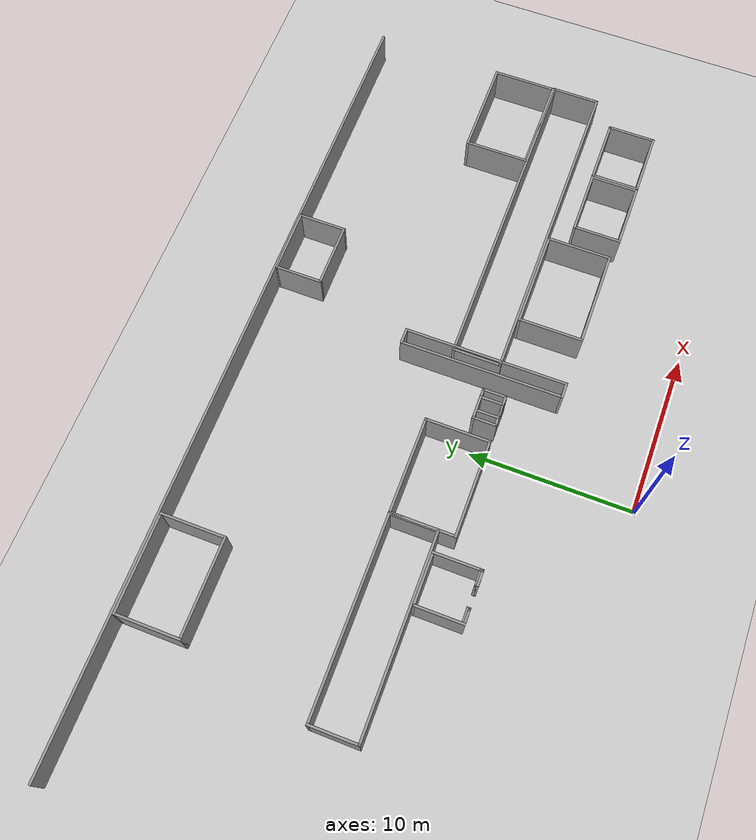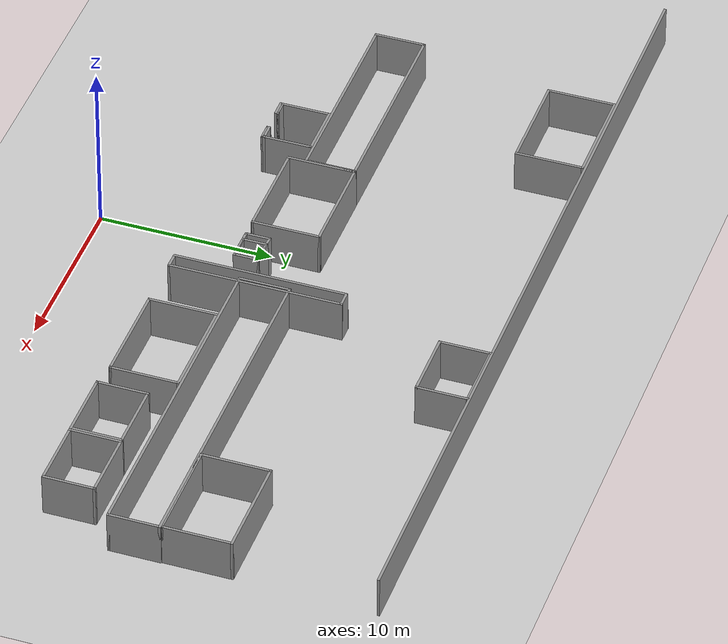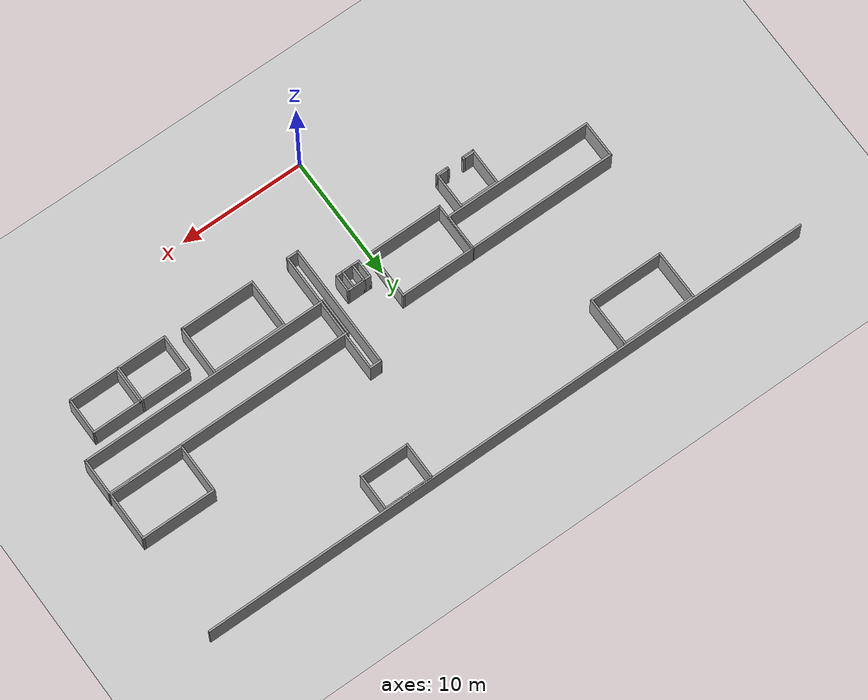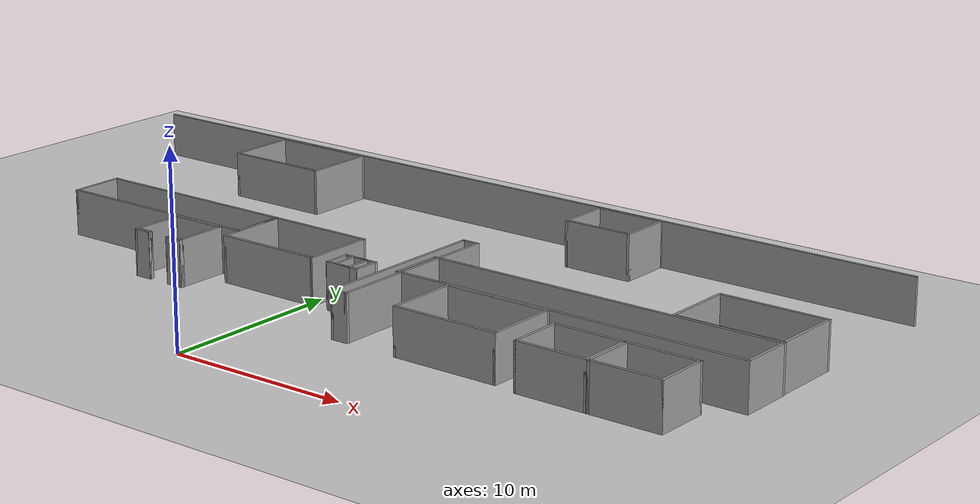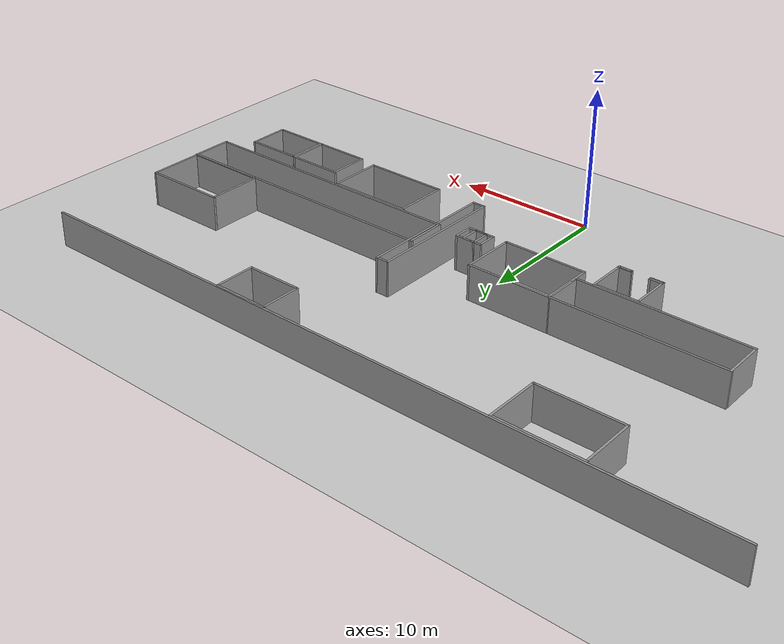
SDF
<sdf version="1.6">
 <world name="default">
  <model name="ground_plane">
   <static>1</static>
   <link name="link">
    <collision name="collision">
     <geometry><plane><normal>0 0 1</normal><size>100 100</size></plane></geometry>
     <surface>
      <contact><collide_bitmask>65535</collide_bitmask></contact>
      <friction><ode><mu>100</mu><mu2>50</mu2></ode></friction>
     </surface>
    </collision>
    <visual name="visual">
     <cast_shadows>0</cast_shadows>
     <geometry><plane><normal>0 0 1</normal><size>100 100</size></plane></geometry>
     <material>
      <script><uri>file://media/materials/scripts/gazebo.material</uri><name>Gazebo/Grey</name></script>
     </material>
    </visual>
   </link>
  </model>
  <model name="wall_50m_1">
   <pose>-0.069466 24.7463 0 0 -0 0</pose>
   <link name="Wall_0">
    <collision name="Wall_0_Collision">
     <geometry><box><size>50 0.15 2.5</size></box></geometry>
     <pose>0 0 1.25 0 -0 0</pose>
    </collision>
    <visual name="Wall_0_Visual">
     <pose>0 0 1.25 0 -0 0</pose>
     <geometry><box><size>50 0.15 2.5</size></box></geometry>
     <material>
      <script><uri>file://media/materials/scripts/gazebo.material</uri><name>Gazebo/Grey</name></script>
      <ambient>1 1 1 1</ambient>
     </material>
     <meta><layer>0</layer></meta>
    </visual>
    <pose>-1e-06 0 0 0 -0 0</pose>
   </link>
   <static>1</static>
  </model>
  <model name="base3x12">
   <pose>-11.5553 11.4309 0 0 -0 0</pose>
   <link name="Wall_0">
    <collision name="Wall_0_Collision">
     <geometry><box><size>3 0.15 2.5</size></box></geometry>
     <pose>0 0 1.25 0 -0 0</pose>
    </collision>
    <visual name="Wall_0_Visual">
     <pose>0 0 1.25 0 -0 0</pose>
     <geometry><box><size>3 0.15 2.5</size></box></geometry>
     <material>
      <script><uri>file://media/materials/scripts/gazebo.material</uri><name>Gazebo/Grey</name></script>
      <ambient>1 1 1 1</ambient>
     </material>
     <meta><layer>0</layer></meta>
    </visual>
    <pose>-5.925 0 0 0 -0 -1.5708</pose>
   </link>
   <link name="Wall_1">
    <collision name="Wall_1_Collision">
     <geometry><box><size>12 0.15 2.5</size></box></geometry>
     <pose>0 0 1.25 0 -0 0</pose>
    </collision>
    <visual name="Wall_1_Visual">
     <pose>0 0 1.25 0 -0 0</pose>
     <geometry><box><size>12 0.15 2.5</size></box></geometry>
     <material>
      <script><uri>file://media/materials/scripts/gazebo.material</uri><name>Gazebo/Grey</name></script>
      <ambient>1 1 1 1</ambient>
     </material>
     <meta><layer>0</layer></meta>
    </visual>
    <pose>0 -1.425 0 0 -0 0</pose>
   </link>
   <link name="Wall_2">
    <collision name="Wall_2_Collision">
     <geometry><box><size>3 0.15 2.5</size></box></geometry>
     <pose>0 0 1.25 0 -0 0</pose>
    </collision>
    <visual name="Wall_2_Visual">
     <pose>0 0 1.25 0 -0 0</pose>
     <geometry><box><size>3 0.15 2.5</size></box></geometry>
     <material>
      <script><uri>file://media/materials/scripts/gazebo.material</uri><name>Gazebo/Grey</name></script>
      <ambient>1 1 1 1</ambient>
     </material>
     <meta><layer>0</layer></meta>
    </visual>
    <pose>5.925 0 0 0 -0 1.5708</pose>
   </link>
   <link name="Wall_3">
    <collision name="Wall_3_Collision">
     <geometry><box><size>12 0.15 2.5</size></box></geometry>
     <pose>0 0 1.25 0 -0 0</pose>
    </collision>
    <visual name="Wall_3_Visual">
     <pose>0 0 1.25 0 -0 0</pose>
     <geometry><box><size>12 0.15 2.5</size></box></geometry>
     <material>
      <script><uri>file://media/materials/scripts/gazebo.material</uri><name>Gazebo/Grey</name></script>
      <ambient>1 1 1 1</ambient>
     </material>
     <meta><layer>0</layer></meta>
    </visual>
    <pose>0 1.425 0 0 -0 3.14159</pose>
   </link>
   <static>1</static>
  </model>
  <model name="base3x20_1">
   <pose>14.8975 11.3894 0 0 -0 0</pose>
   <link name="Wall_16">
    <collision name="Wall_16_Collision">
     <geometry><box><size>3 0.15 2.5</size></box></geometry>
     <pose>0 0 1.25 0 -0 0</pose>
    </collision>
    <visual name="Wall_16_Visual">
     <pose>0 0 1.25 0 -0 0</pose>
     <geometry><box><size>3 0.15 2.5</size></box></geometry>
     <material>
      <script><uri>file://media/materials/scripts/gazebo.material</uri><name>Gazebo/Grey</name></script>
      <ambient>1 1 1 1</ambient>
     </material>
     <meta><layer>0</layer></meta>
    </visual>
    <pose>-9.925 -0 0 0 -0 -1.5708</pose>
   </link>
   <link name="Wall_17">
    <collision name="Wall_17_Collision">
     <geometry><box><size>20 0.15 2.5</size></box></geometry>
     <pose>0 0 1.25 0 -0 0</pose>
    </collision>
    <visual name="Wall_17_Visual">
     <pose>0 0 1.25 0 -0 0</pose>
     <geometry><box><size>20 0.15 2.5</size></box></geometry>
     <material>
      <script><uri>file://media/materials/scripts/gazebo.material</uri><name>Gazebo/Grey</name></script>
      <ambient>1 1 1 1</ambient>
     </material>
     <meta><layer>0</layer></meta>
    </visual>
    <pose>-0 -1.425 0 0 -0 0</pose>
   </link>
   <link name="Wall_18">
    <collision name="Wall_18_Collision">
     <geometry><box><size>3 0.15 2.5</size></box></geometry>
     <pose>0 0 1.25 0 -0 0</pose>
    </collision>
    <visual name="Wall_18_Visual">
     <pose>0 0 1.25 0 -0 0</pose>
     <geometry><box><size>3 0.15 2.5</size></box></geometry>
     <material>
      <script><uri>file://media/materials/scripts/gazebo.material</uri><name>Gazebo/Grey</name></script>
      <ambient>1 1 1 1</ambient>
     </material>
     <meta><layer>0</layer></meta>
    </visual>
    <pose>9.925 -0 0 0 -0 1.5708</pose>
   </link>
   <link name="Wall_19">
    <collision name="Wall_19_Collision">
     <geometry><box><size>20 0.15 2.5</size></box></geometry>
     <pose>0 0 1.25 0 -0 0</pose>
    </collision>
    <visual name="Wall_19_Visual">
     <pose>0 0 1.25 0 -0 0</pose>
     <geometry><box><size>20 0.15 2.5</size></box></geometry>
     <material>
      <script><uri>file://media/materials/scripts/gazebo.material</uri><name>Gazebo/Grey</name></script>
      <ambient>1 1 1 1</ambient>
     </material>
     <meta><layer>0</layer></meta>
    </visual>
    <pose>-0 1.425 0 0 -0 3.14159</pose>
   </link>
   <static>1</static>
  </model>
  <model name="base4x6_0">
   <pose>-2.63284 10.9342 0 0 -0 0</pose>
   <link name="Wall_23">
    <collision name="Wall_23_Collision">
     <geometry><box><size>4 0.15 2.5</size></box></geometry>
     <pose>0 0 1.25 0 -0 0</pose>
    </collision>
    <visual name="Wall_23_Visual">
     <pose>0 0 1.25 0 -0 0</pose>
     <geometry><box><size>4 0.15 2.5</size></box></geometry>
     <material>
      <script><uri>file://media/materials/scripts/gazebo.material</uri><name>Gazebo/Grey</name></script>
      <ambient>1 1 1 1</ambient>
     </material>
     <meta><layer>0</layer></meta>
    </visual>
    <pose>-2.925 0 0 0 -0 -1.5708</pose>
   </link>
   <link name="Wall_24">
    <collision name="Wall_24_Collision">
     <geometry><box><size>6 0.15 2.5</size></box></geometry>
     <pose>0 0 1.25 0 -0 0</pose>
    </collision>
    <visual name="Wall_24_Visual">
     <pose>0 0 1.25 0 -0 0</pose>
     <geometry><box><size>6 0.15 2.5</size></box></geometry>
     <material>
      <script><uri>file://media/materials/scripts/gazebo.material</uri><name>Gazebo/Grey</name></script>
      <ambient>1 1 1 1</ambient>
     </material>
     <meta><layer>0</layer></meta>
    </visual>
    <pose>-0 -1.925 0 0 -0 0</pose>
   </link>
   <link name="Wall_25">
    <collision name="Wall_25_Collision">
     <geometry><box><size>4 0.15 2.5</size></box></geometry>
     <pose>0 0 1.25 0 -0 0</pose>
    </collision>
    <visual name="Wall_25_Visual">
     <pose>0 0 1.25 0 -0 0</pose>
     <geometry><box><size>4 0.15 2.5</size></box></geometry>
     <material>
      <script><uri>file://media/materials/scripts/gazebo.material</uri><name>Gazebo/Grey</name></script>
      <ambient>1 1 1 1</ambient>
     </material>
     <meta><layer>0</layer></meta>
    </visual>
    <pose>2.925 0 0 0 -0 1.5708</pose>
   </link>
   <link name="Wall_26">
    <collision name="Wall_26_Collision">
     <geometry><box><size>6 0.15 2.5</size></box></geometry>
     <pose>0 0 1.25 0 -0 0</pose>
    </collision>
    <visual name="Wall_26_Visual">
     <pose>0 0 1.25 0 -0 0</pose>
     <geometry><box><size>6 0.15 2.5</size></box></geometry>
     <material>
      <script><uri>file://media/materials/scripts/gazebo.material</uri><name>Gazebo/Grey</name></script>
      <ambient>1 1 1 1</ambient>
     </material>
     <meta><layer>0</layer></meta>
    </visual>
    <pose>-0 1.925 0 0 -0 3.14159</pose>
   </link>
   <static>1</static>
  </model>
  <model name="base4x6_1">
   <pose>21.851 14.8303 0 0 -0 0</pose>
   <link name="Wall_23">
    <collision name="Wall_23_Collision">
     <geometry><box><size>4 0.15 2.5</size></box></geometry>
     <pose>0 0 1.25 0 -0 0</pose>
    </collision>
    <visual name="Wall_23_Visual">
     <pose>0 0 1.25 0 -0 0</pose>
     <geometry><box><size>4 0.15 2.5</size></box></geometry>
     <material>
      <script><uri>file://media/materials/scripts/gazebo.material</uri><name>Gazebo/Grey</name></script>
      <ambient>1 1 1 1</ambient>
     </material>
     <meta><layer>0</layer></meta>
    </visual>
    <pose>-2.925 0 0 0 -0 -1.5708</pose>
   </link>
   <link name="Wall_24">
    <collision name="Wall_24_Collision">
     <geometry><box><size>6 0.15 2.5</size></box></geometry>
     <pose>0 0 1.25 0 -0 0</pose>
    </collision>
    <visual name="Wall_24_Visual">
     <pose>0 0 1.25 0 -0 0</pose>
     <geometry><box><size>6 0.15 2.5</size></box></geometry>
     <material>
      <script><uri>file://media/materials/scripts/gazebo.material</uri><name>Gazebo/Grey</name></script>
      <ambient>1 1 1 1</ambient>
     </material>
     <meta><layer>0</layer></meta>
    </visual>
    <pose>-0 -1.925 0 0 -0 0</pose>
   </link>
   <link name="Wall_25">
    <collision name="Wall_25_Collision">
     <geometry><box><size>4 0.15 2.5</size></box></geometry>
     <pose>0 0 1.25 0 -0 0</pose>
    </collision>
    <visual name="Wall_25_Visual">
     <pose>0 0 1.25 0 -0 0</pose>
     <geometry><box><size>4 0.15 2.5</size></box></geometry>
     <material>
      <script><uri>file://media/materials/scripts/gazebo.material</uri><name>Gazebo/Grey</name></script>
      <ambient>1 1 1 1</ambient>
     </material>
     <meta><layer>0</layer></meta>
    </visual>
    <pose>2.925 0 0 0 -0 1.5708</pose>
   </link>
   <link name="Wall_26">
    <collision name="Wall_26_Collision">
     <geometry><box><size>6 0.15 2.5</size></box></geometry>
     <pose>0 0 1.25 0 -0 0</pose>
    </collision>
    <visual name="Wall_26_Visual">
     <pose>0 0 1.25 0 -0 0</pose>
     <geometry><box><size>6 0.15 2.5</size></box></geometry>
     <material>
      <script><uri>file://media/materials/scripts/gazebo.material</uri><name>Gazebo/Grey</name></script>
      <ambient>1 1 1 1</ambient>
     </material>
     <meta><layer>0</layer></meta>
    </visual>
    <pose>-0 1.925 0 0 -0 3.14159</pose>
   </link>
   <static>1</static>
  </model>
  <model name="base4x6_3">
   <pose>-12.9593 22.6793 0 0 -0 0</pose>
   <link name="Wall_23">
    <collision name="Wall_23_Collision">
     <geometry><box><size>4 0.15 2.5</size></box></geometry>
     <pose>0 0 1.25 0 -0 0</pose>
    </collision>
    <visual name="Wall_23_Visual">
     <pose>0 0 1.25 0 -0 0</pose>
     <geometry><box><size>4 0.15 2.5</size></box></geometry>
     <material>
      <script><uri>file://media/materials/scripts/gazebo.material</uri><name>Gazebo/Grey</name></script>
      <ambient>1 1 1 1</ambient>
     </material>
     <meta><layer>0</layer></meta>
    </visual>
    <pose>-2.925 0 0 0 -0 -1.5708</pose>
   </link>
   <link name="Wall_24">
    <collision name="Wall_24_Collision">
     <geometry><box><size>6 0.15 2.5</size></box></geometry>
     <pose>0 0 1.25 0 -0 0</pose>
    </collision>
    <visual name="Wall_24_Visual">
     <pose>0 0 1.25 0 -0 0</pose>
     <geometry><box><size>6 0.15 2.5</size></box></geometry>
     <material>
      <script><uri>file://media/materials/scripts/gazebo.material</uri><name>Gazebo/Grey</name></script>
      <ambient>1 1 1 1</ambient>
     </material>
     <meta><layer>0</layer></meta>
    </visual>
    <pose>-0 -1.925 0 0 -0 0</pose>
   </link>
   <link name="Wall_25">
    <collision name="Wall_25_Collision">
     <geometry><box><size>4 0.15 2.5</size></box></geometry>
     <pose>0 0 1.25 0 -0 0</pose>
    </collision>
    <visual name="Wall_25_Visual">
     <pose>0 0 1.25 0 -0 0</pose>
     <geometry><box><size>4 0.15 2.5</size></box></geometry>
     <material>
      <script><uri>file://media/materials/scripts/gazebo.material</uri><name>Gazebo/Grey</name></script>
      <ambient>1 1 1 1</ambient>
     </material>
     <meta><layer>0</layer></meta>
    </visual>
    <pose>2.925 0 0 0 -0 1.5708</pose>
   </link>
   <link name="Wall_26">
    <collision name="Wall_26_Collision">
     <geometry><box><size>6 0.15 2.5</size></box></geometry>
     <pose>0 0 1.25 0 -0 0</pose>
    </collision>
    <visual name="Wall_26_Visual">
     <pose>0 0 1.25 0 -0 0</pose>
     <geometry><box><size>6 0.15 2.5</size></box></geometry>
     <material>
      <script><uri>file://media/materials/scripts/gazebo.material</uri><name>Gazebo/Grey</name></script>
      <ambient>1 1 1 1</ambient>
     </material>
     <meta><layer>0</layer></meta>
    </visual>
    <pose>-0 1.925 0 0 -0 3.14159</pose>
   </link>
   <static>1</static>
  </model>
  <model name="base3x4_1">
   <pose>8.29177 23.232 0 0 -0 0</pose>
   <link name="Wall_18">
    <collision name="Wall_18_Collision">
     <geometry><box><size>3 0.15 2.5</size></box></geometry>
     <pose>0 0 1.25 0 -0 0</pose>
    </collision>
    <visual name="Wall_18_Visual">
     <pose>0 0 1.25 0 -0 0</pose>
     <geometry><box><size>3 0.15 2.5</size></box></geometry>
     <material>
      <script><uri>file://media/materials/scripts/gazebo.material</uri><name>Gazebo/Grey</name></script>
      <ambient>1 1 1 1</ambient>
     </material>
     <meta><layer>0</layer></meta>
    </visual>
    <pose>-1.925 -0 0 0 -0 -1.5708</pose>
   </link>
   <link name="Wall_19">
    <collision name="Wall_19_Collision">
     <geometry><box><size>4 0.15 2.5</size></box></geometry>
     <pose>0 0 1.25 0 -0 0</pose>
    </collision>
    <visual name="Wall_19_Visual">
     <pose>0 0 1.25 0 -0 0</pose>
     <geometry><box><size>4 0.15 2.5</size></box></geometry>
     <material>
      <script><uri>file://media/materials/scripts/gazebo.material</uri><name>Gazebo/Grey</name></script>
      <ambient>1 1 1 1</ambient>
     </material>
     <meta><layer>0</layer></meta>
    </visual>
    <pose>-0 -1.425 0 0 -0 0</pose>
   </link>
   <link name="Wall_20">
    <collision name="Wall_20_Collision">
     <geometry><box><size>3 0.15 2.5</size></box></geometry>
     <pose>0 0 1.25 0 -0 0</pose>
    </collision>
    <visual name="Wall_20_Visual">
     <pose>0 0 1.25 0 -0 0</pose>
     <geometry><box><size>3 0.15 2.5</size></box></geometry>
     <material>
      <script><uri>file://media/materials/scripts/gazebo.material</uri><name>Gazebo/Grey</name></script>
      <ambient>1 1 1 1</ambient>
     </material>
     <meta><layer>0</layer></meta>
    </visual>
    <pose>1.925 -0 0 0 -0 1.5708</pose>
   </link>
   <link name="Wall_21">
    <collision name="Wall_21_Collision">
     <geometry><box><size>4 0.15 2.5</size></box></geometry>
     <pose>0 0 1.25 0 -0 0</pose>
    </collision>
    <visual name="Wall_21_Visual">
     <pose>0 0 1.25 0 -0 0</pose>
     <geometry><box><size>4 0.15 2.5</size></box></geometry>
     <material>
      <script><uri>file://media/materials/scripts/gazebo.material</uri><name>Gazebo/Grey</name></script>
      <ambient>1 1 1 1</ambient>
     </material>
     <meta><layer>0</layer></meta>
    </visual>
    <pose>-0 1.425 0 0 -0 3.14159</pose>
   </link>
   <static>1</static>
  </model>
  <model name="base10x1_0">
   <pose>4.76084 10.9128 0 0 -0 0</pose>
   <link name="Wall_15">
    <collision name="Wall_15_Collision">
     <geometry><box><size>10 0.15 2.5</size></box></geometry>
     <pose>0 0 1.25 0 -0 0</pose>
    </collision>
    <visual name="Wall_15_Visual">
     <pose>0 0 1.25 0 -0 0</pose>
     <geometry><box><size>10 0.15 2.5</size></box></geometry>
     <material>
      <script><uri>file://media/materials/scripts/gazebo.material</uri><name>Gazebo/Grey</name></script>
      <ambient>1 1 1 1</ambient>
     </material>
     <meta><layer>0</layer></meta>
    </visual>
    <pose>-0.425 0 0 0 -0 1.5708</pose>
   </link>
   <link name="Wall_16">
    <collision name="Wall_16_Collision">
     <geometry><box><size>1 0.15 2.5</size></box></geometry>
     <pose>0 0 1.25 0 -0 0</pose>
    </collision>
    <visual name="Wall_16_Visual">
     <pose>0 0 1.25 0 -0 0</pose>
     <geometry><box><size>1 0.15 2.5</size></box></geometry>
     <material>
      <script><uri>file://media/materials/scripts/gazebo.material</uri><name>Gazebo/Grey</name></script>
      <ambient>1 1 1 1</ambient>
     </material>
     <meta><layer>0</layer></meta>
    </visual>
    <pose>0 4.925 0 0 -0 0</pose>
   </link>
   <link name="Wall_17">
    <collision name="Wall_17_Collision">
     <geometry><box><size>10 0.15 2.5</size></box></geometry>
     <pose>0 0 1.25 0 -0 0</pose>
    </collision>
    <visual name="Wall_17_Visual">
     <pose>0 0 1.25 0 -0 0</pose>
     <geometry><box><size>10 0.15 2.5</size></box></geometry>
     <material>
      <script><uri>file://media/materials/scripts/gazebo.material</uri><name>Gazebo/Grey</name></script>
      <ambient>1 1 1 1</ambient>
     </material>
     <meta><layer>0</layer></meta>
    </visual>
    <pose>0.425 0 0 0 -0 -1.5708</pose>
   </link>
   <link name="Wall_18">
    <collision name="Wall_18_Collision">
     <geometry><box><size>1 0.15 2.5</size></box></geometry>
     <pose>0 0 1.25 0 -0 0</pose>
    </collision>
    <visual name="Wall_18_Visual">
     <pose>0 0 1.25 0 -0 0</pose>
     <geometry><box><size>1 0.15 2.5</size></box></geometry>
     <material>
      <script><uri>file://media/materials/scripts/gazebo.material</uri><name>Gazebo/Grey</name></script>
      <ambient>1 1 1 1</ambient>
     </material>
     <meta><layer>0</layer></meta>
    </visual>
    <pose>0 -4.925 0 0 -0 3.14159</pose>
   </link>
   <static>1</static>
  </model>
  <model name="box_1.5mx1.5m">
   <pose>2.01566 9.69372 0 0 -0 0</pose>
   <link name="Wall_15">
    <collision name="Wall_15_Collision">
     <geometry><box><size>1.5 0.15 2.5</size></box></geometry>
     <pose>0 0 1.25 0 -0 0</pose>
    </collision>
    <visual name="Wall_15_Visual">
     <pose>0 0 1.25 0 -0 0</pose>
     <geometry><box><size>1.5 0.15 2.5</size></box></geometry>
     <material>
      <script><uri>file://media/materials/scripts/gazebo.material</uri><name>Gazebo/Grey</name></script>
      <ambient>1 1 1 1</ambient>
     </material>
     <meta><layer>0</layer></meta>
    </visual>
    <pose>-0.675 -0 0 0 -0 -1.5708</pose>
   </link>
   <link name="Wall_16">
    <collision name="Wall_16_Collision">
     <geometry><box><size>1.5 0.15 2.5</size></box></geometry>
     <pose>0 0 1.25 0 -0 0</pose>
    </collision>
    <visual name="Wall_16_Visual">
     <pose>0 0 1.25 0 -0 0</pose>
     <geometry><box><size>1.5 0.15 2.5</size></box></geometry>
     <material>
      <script><uri>file://media/materials/scripts/gazebo.material</uri><name>Gazebo/Grey</name></script>
      <ambient>1 1 1 1</ambient>
     </material>
     <meta><layer>0</layer></meta>
    </visual>
    <pose>-0 -0.675 0 0 -0 0</pose>
   </link>
   <link name="Wall_17">
    <collision name="Wall_17_Collision">
     <geometry><box><size>1.5 0.15 2.5</size></box></geometry>
     <pose>0 0 1.25 0 -0 0</pose>
    </collision>
    <visual name="Wall_17_Visual">
     <pose>0 0 1.25 0 -0 0</pose>
     <geometry><box><size>1.5 0.15 2.5</size></box></geometry>
     <material>
      <script><uri>file://media/materials/scripts/gazebo.material</uri><name>Gazebo/Grey</name></script>
      <ambient>1 1 1 1</ambient>
     </material>
     <meta><layer>0</layer></meta>
    </visual>
    <pose>0.675 -0 0 0 -0 1.5708</pose>
   </link>
   <link name="Wall_18">
    <collision name="Wall_18_Collision">
     <geometry><box><size>1.5 0.15 2.5</size></box></geometry>
     <pose>0 0 1.25 0 -0 0</pose>
    </collision>
    <visual name="Wall_18_Visual">
     <pose>0 0 1.25 0 -0 0</pose>
     <geometry><box><size>1.5 0.15 2.5</size></box></geometry>
     <material>
      <script><uri>file://media/materials/scripts/gazebo.material</uri><name>Gazebo/Grey</name></script>
      <ambient>1 1 1 1</ambient>
     </material>
     <meta><layer>0</layer></meta>
    </visual>
    <pose>-0 0.675 0 0 -0 3.14159</pose>
   </link>
   <static>1</static>
  </model>
  <model name="box_1.5mx1.5m_0">
   <pose>2.50923 9.69521 0 0 -0 0</pose>
   <link name="Wall_15">
    <collision name="Wall_15_Collision">
     <geometry><box><size>1.5 0.15 2.5</size></box></geometry>
     <pose>0 0 1.25 0 -0 0</pose>
    </collision>
    <visual name="Wall_15_Visual">
     <pose>0 0 1.25 0 -0 0</pose>
     <geometry><box><size>1.5 0.15 2.5</size></box></geometry>
     <material>
      <script><uri>file://media/materials/scripts/gazebo.material</uri><name>Gazebo/Grey</name></script>
      <ambient>1 1 1 1</ambient>
     </material>
     <meta><layer>0</layer></meta>
    </visual>
    <pose>-0.675 -0 0 0 -0 -1.5708</pose>
   </link>
   <link name="Wall_16">
    <collision name="Wall_16_Collision">
     <geometry><box><size>1.5 0.15 2.5</size></box></geometry>
     <pose>0 0 1.25 0 -0 0</pose>
    </collision>
    <visual name="Wall_16_Visual">
     <pose>0 0 1.25 0 -0 0</pose>
     <geometry><box><size>1.5 0.15 2.5</size></box></geometry>
     <material>
      <script><uri>file://media/materials/scripts/gazebo.material</uri><name>Gazebo/Grey</name></script>
      <ambient>1 1 1 1</ambient>
     </material>
     <meta><layer>0</layer></meta>
    </visual>
    <pose>-0 -0.675 0 0 -0 0</pose>
   </link>
   <link name="Wall_17">
    <collision name="Wall_17_Collision">
     <geometry><box><size>1.5 0.15 2.5</size></box></geometry>
     <pose>0 0 1.25 0 -0 0</pose>
    </collision>
    <visual name="Wall_17_Visual">
     <pose>0 0 1.25 0 -0 0</pose>
     <geometry><box><size>1.5 0.15 2.5</size></box></geometry>
     <material>
      <script><uri>file://media/materials/scripts/gazebo.material</uri><name>Gazebo/Grey</name></script>
      <ambient>1 1 1 1</ambient>
     </material>
     <meta><layer>0</layer></meta>
    </visual>
    <pose>0.675 -0 0 0 -0 1.5708</pose>
   </link>
   <link name="Wall_18">
    <collision name="Wall_18_Collision">
     <geometry><box><size>1.5 0.15 2.5</size></box></geometry>
     <pose>0 0 1.25 0 -0 0</pose>
    </collision>
    <visual name="Wall_18_Visual">
     <pose>0 0 1.25 0 -0 0</pose>
     <geometry><box><size>1.5 0.15 2.5</size></box></geometry>
     <material>
      <script><uri>file://media/materials/scripts/gazebo.material</uri><name>Gazebo/Grey</name></script>
      <ambient>1 1 1 1</ambient>
     </material>
     <meta><layer>0</layer></meta>
    </visual>
    <pose>-0 0.675 0 0 -0 3.14159</pose>
   </link>
   <static>1</static>
  </model>
  <model name="base3x4_5">
   <pose>21.2856 7.16628 0 0 -0 0</pose>
   <link name="Wall_18">
    <collision name="Wall_18_Collision">
     <geometry><box><size>3 0.15 2.5</size></box></geometry>
     <pose>0 0 1.25 0 -0 0</pose>
    </collision>
    <visual name="Wall_18_Visual">
     <pose>0 0 1.25 0 -0 0</pose>
     <geometry><box><size>3 0.15 2.5</size></box></geometry>
     <material>
      <script><uri>file://media/materials/scripts/gazebo.material</uri><name>Gazebo/Grey</name></script>
      <ambient>1 1 1 1</ambient>
     </material>
     <meta><layer>0</layer></meta>
    </visual>
    <pose>-1.925 -0 0 0 -0 -1.5708</pose>
   </link>
   <link name="Wall_19">
    <collision name="Wall_19_Collision">
     <geometry><box><size>4 0.15 2.5</size></box></geometry>
     <pose>0 0 1.25 0 -0 0</pose>
    </collision>
    <visual name="Wall_19_Visual">
     <pose>0 0 1.25 0 -0 0</pose>
     <geometry><box><size>4 0.15 2.5</size></box></geometry>
     <material>
      <script><uri>file://media/materials/scripts/gazebo.material</uri><name>Gazebo/Grey</name></script>
      <ambient>1 1 1 1</ambient>
     </material>
     <meta><layer>0</layer></meta>
    </visual>
    <pose>-0 -1.425 0 0 -0 0</pose>
   </link>
   <link name="Wall_20">
    <collision name="Wall_20_Collision">
     <geometry><box><size>3 0.15 2.5</size></box></geometry>
     <pose>0 0 1.25 0 -0 0</pose>
    </collision>
    <visual name="Wall_20_Visual">
     <pose>0 0 1.25 0 -0 0</pose>
     <geometry><box><size>3 0.15 2.5</size></box></geometry>
     <material>
      <script><uri>file://media/materials/scripts/gazebo.material</uri><name>Gazebo/Grey</name></script>
      <ambient>1 1 1 1</ambient>
     </material>
     <meta><layer>0</layer></meta>
    </visual>
    <pose>1.925 -0 0 0 -0 1.5708</pose>
   </link>
   <link name="Wall_21">
    <collision name="Wall_21_Collision">
     <geometry><box><size>4 0.15 2.5</size></box></geometry>
     <pose>0 0 1.25 0 -0 0</pose>
    </collision>
    <visual name="Wall_21_Visual">
     <pose>0 0 1.25 0 -0 0</pose>
     <geometry><box><size>4 0.15 2.5</size></box></geometry>
     <material>
      <script><uri>file://media/materials/scripts/gazebo.material</uri><name>Gazebo/Grey</name></script>
      <ambient>1 1 1 1</ambient>
     </material>
     <meta><layer>0</layer></meta>
    </visual>
    <pose>-0 1.425 0 0 -0 3.14159</pose>
   </link>
   <static>1</static>
  </model>
  <model name="base3x4_3">
   <pose>17.29 7.16299 0 0 -0 0</pose>
   <link name="Wall_18">
    <collision name="Wall_18_Collision">
     <geometry><box><size>3 0.15 2.5</size></box></geometry>
     <pose>0 0 1.25 0 -0 0</pose>
    </collision>
    <visual name="Wall_18_Visual">
     <pose>0 0 1.25 0 -0 0</pose>
     <geometry><box><size>3 0.15 2.5</size></box></geometry>
     <material>
      <script><uri>file://media/materials/scripts/gazebo.material</uri><name>Gazebo/Grey</name></script>
      <ambient>1 1 1 1</ambient>
     </material>
     <meta><layer>0</layer></meta>
    </visual>
    <pose>-1.925 -0 0 0 -0 -1.5708</pose>
   </link>
   <link name="Wall_19">
    <collision name="Wall_19_Collision">
     <geometry><box><size>4 0.15 2.5</size></box></geometry>
     <pose>0 0 1.25 0 -0 0</pose>
    </collision>
    <visual name="Wall_19_Visual">
     <pose>0 0 1.25 0 -0 0</pose>
     <geometry><box><size>4 0.15 2.5</size></box></geometry>
     <material>
      <script><uri>file://media/materials/scripts/gazebo.material</uri><name>Gazebo/Grey</name></script>
      <ambient>1 1 1 1</ambient>
     </material>
     <meta><layer>0</layer></meta>
    </visual>
    <pose>-0 -1.425 0 0 -0 0</pose>
   </link>
   <link name="Wall_20">
    <collision name="Wall_20_Collision">
     <geometry><box><size>3 0.15 2.5</size></box></geometry>
     <pose>0 0 1.25 0 -0 0</pose>
    </collision>
    <visual name="Wall_20_Visual">
     <pose>0 0 1.25 0 -0 0</pose>
     <geometry><box><size>3 0.15 2.5</size></box></geometry>
     <material>
      <script><uri>file://media/materials/scripts/gazebo.material</uri><name>Gazebo/Grey</name></script>
      <ambient>1 1 1 1</ambient>
     </material>
     <meta><layer>0</layer></meta>
    </visual>
    <pose>1.925 -0 0 0 -0 1.5708</pose>
   </link>
   <link name="Wall_21">
    <collision name="Wall_21_Collision">
     <geometry><box><size>4 0.15 2.5</size></box></geometry>
     <pose>0 0 1.25 0 -0 0</pose>
    </collision>
    <visual name="Wall_21_Visual">
     <pose>0 0 1.25 0 -0 0</pose>
     <geometry><box><size>4 0.15 2.5</size></box></geometry>
     <material>
      <script><uri>file://media/materials/scripts/gazebo.material</uri><name>Gazebo/Grey</name></script>
      <ambient>1 1 1 1</ambient>
     </material>
     <meta><layer>0</layer></meta>
    </visual>
    <pose>-0 1.425 0 0 -0 3.14159</pose>
   </link>
   <static>1</static>
  </model>
  <model name="elevator_120cm_3m_clone">
   <pose>-8.34006 8.44281 0 0 0 -3.14133</pose>
   <link name="Wall_40">
    <collision name="Wall_40_Collision">
     <geometry><box><size>1 0.15 2.5</size></box></geometry>
     <pose>0 0 1.25 0 -0 0</pose>
    </collision>
    <visual name="Wall_40_Visual">
     <pose>0 0 1.25 0 -0 0</pose>
     <geometry><box><size>1 0.15 2.5</size></box></geometry>
     <material>
      <script><uri>file://media/materials/scripts/gazebo.material</uri><name>Gazebo/Grey</name></script>
      <ambient>1 1 1 1</ambient>
     </material>
     <meta><layer>0</layer></meta>
    </visual>
    <pose>1.1 1.425 0 0 -0 0</pose>
   </link>
   <link name="Wall_41">
    <collision name="Wall_41_Collision">
     <geometry><box><size>3 0.15 2.5</size></box></geometry>
     <pose>0 0 1.25 0 -0 0</pose>
    </collision>
    <visual name="Wall_41_Visual">
     <pose>0 0 1.25 0 -0 0</pose>
     <geometry><box><size>3 0.15 2.5</size></box></geometry>
     <material>
      <script><uri>file://media/materials/scripts/gazebo.material</uri><name>Gazebo/Grey</name></script>
      <ambient>1 1 1 1</ambient>
     </material>
     <meta><layer>0</layer></meta>
    </visual>
    <pose>1.525 0 0 0 -0 -1.5708</pose>
   </link>
   <link name="Wall_43">
    <collision name="Wall_43_Collision">
     <geometry><box><size>1 0.15 2.5</size></box></geometry>
     <pose>0 0 1.25 0 -0 0</pose>
    </collision>
    <visual name="Wall_43_Visual">
     <pose>0 0 1.25 0 -0 0</pose>
     <geometry><box><size>1 0.15 2.5</size></box></geometry>
     <material>
      <script><uri>file://media/materials/scripts/gazebo.material</uri><name>Gazebo/Grey</name></script>
      <ambient>1 1 1 1</ambient>
     </material>
     <meta><layer>0</layer></meta>
    </visual>
    <pose>-1.1 1.425 0 0 -0 3.14159</pose>
   </link>
   <link name="Wall_44">
    <collision name="Wall_44_Collision">
     <geometry><box><size>3 0.15 2.5</size></box></geometry>
     <pose>0 0 1.25 0 -0 0</pose>
    </collision>
    <visual name="Wall_44_Visual">
     <pose>0 0 1.25 0 -0 0</pose>
     <geometry><box><size>3 0.15 2.5</size></box></geometry>
     <material>
      <script><uri>file://media/materials/scripts/gazebo.material</uri><name>Gazebo/Grey</name></script>
      <ambient>1 1 1 1</ambient>
     </material>
     <meta><layer>0</layer></meta>
    </visual>
    <pose>-1.525 0 0 0 -0 -1.5708</pose>
   </link>
   <link name="Wall_45">
    <collision name="Wall_45_Collision">
     <geometry><box><size>3.2 0.15 2.5</size></box></geometry>
     <pose>0 0 1.25 0 -0 0</pose>
    </collision>
    <visual name="Wall_45_Visual">
     <pose>0 0 1.25 0 -0 0</pose>
     <geometry><box><size>3.2 0.15 2.5</size></box></geometry>
     <material>
      <script><uri>file://media/materials/scripts/gazebo.material</uri><name>Gazebo/Grey</name></script>
      <ambient>1 1 1 1</ambient>
     </material>
     <meta><layer>0</layer></meta>
    </visual>
    <pose>0 -1.425 0 0 -0 0</pose>
   </link>
   <link name="Wall_47">
    <collision name="Wall_47_Collision">
     <geometry><box><size>0.25 0.15 2.5</size></box></geometry>
     <pose>0 0 1.25 0 -0 0</pose>
    </collision>
    <visual name="Wall_47_Visual">
     <pose>0 0 1.25 0 -0 0</pose>
     <geometry><box><size>0.25 0.15 2.5</size></box></geometry>
     <material>
      <script><uri>file://media/materials/scripts/gazebo.material</uri><name>Gazebo/Grey</name></script>
      <ambient>1 1 1 1</ambient>
     </material>
     <meta><layer>0</layer></meta>
    </visual>
    <pose>-0.675 1.375 0 0 -0 -1.5708</pose>
   </link>
   <link name="Wall_49">
    <collision name="Wall_49_Collision">
     <geometry><box><size>0.25 0.15 2.5</size></box></geometry>
     <pose>0 0 1.25 0 -0 0</pose>
    </collision>
    <visual name="Wall_49_Visual">
     <pose>0 0 1.25 0 -0 0</pose>
     <geometry><box><size>0.25 0.15 2.5</size></box></geometry>
     <material>
      <script><uri>file://media/materials/scripts/gazebo.material</uri><name>Gazebo/Grey</name></script>
      <ambient>1 1 1 1</ambient>
     </material>
     <meta><layer>0</layer></meta>
    </visual>
    <pose>-1.525 1.375 0 0 -0 -1.5708</pose>
   </link>
   <link name="Wall_50">
    <collision name="Wall_50_Collision">
     <geometry><box><size>1 0.15 2.5</size></box></geometry>
     <pose>0 0 1.25 0 -0 0</pose>
    </collision>
    <visual name="Wall_50_Visual">
     <pose>0 0 1.25 0 -0 0</pose>
     <geometry><box><size>1 0.15 2.5</size></box></geometry>
     <material>
      <script><uri>file://media/materials/scripts/gazebo.material</uri><name>Gazebo/Grey</name></script>
      <ambient>1 1 1 1</ambient>
     </material>
     <meta><layer>0</layer></meta>
    </visual>
    <pose>-1.1 1.325 0 0 -0 0</pose>
   </link>
   <link name="Wall_52">
    <collision name="Wall_52_Collision">
     <geometry><box><size>0.25 0.15 2.5</size></box></geometry>
     <pose>0 0 1.25 0 -0 0</pose>
    </collision>
    <visual name="Wall_52_Visual">
     <pose>0 0 1.25 0 -0 0</pose>
     <geometry><box><size>0.25 0.15 2.5</size></box></geometry>
     <material>
      <script><uri>file://media/materials/scripts/gazebo.material</uri><name>Gazebo/Grey</name></script>
      <ambient>1 1 1 1</ambient>
     </material>
     <meta><layer>0</layer></meta>
    </visual>
    <pose>0.675 1.375 0 0 -0 -1.5708</pose>
   </link>
   <link name="Wall_54">
    <collision name="Wall_54_Collision">
     <geometry><box><size>0.25 0.15 2.5</size></box></geometry>
     <pose>0 0 1.25 0 -0 0</pose>
    </collision>
    <visual name="Wall_54_Visual">
     <pose>0 0 1.25 0 -0 0</pose>
     <geometry><box><size>0.25 0.15 2.5</size></box></geometry>
     <material>
      <script><uri>file://media/materials/scripts/gazebo.material</uri><name>Gazebo/Grey</name></script>
      <ambient>1 1 1 1</ambient>
     </material>
     <meta><layer>0</layer></meta>
    </visual>
    <pose>1.525 1.375 0 0 -0 -1.5708</pose>
   </link>
   <link name="Wall_55">
    <collision name="Wall_55_Collision">
     <geometry><box><size>1 0.15 2.5</size></box></geometry>
     <pose>0 0 1.25 0 -0 0</pose>
    </collision>
    <visual name="Wall_55_Visual">
     <pose>0 0 1.25 0 -0 0</pose>
     <geometry><box><size>1 0.15 2.5</size></box></geometry>
     <material>
      <script><uri>file://media/materials/scripts/gazebo.material</uri><name>Gazebo/Grey</name></script>
      <ambient>1 1 1 1</ambient>
     </material>
     <meta><layer>0</layer></meta>
    </visual>
    <pose>1.1 1.325 0 0 -0 3.14159</pose>
   </link>
   <static>1</static>
  </model>
  <model name="base4x6_2">
   <pose>11.108 7.89396 0 0 -0 0</pose>
   <link name="Wall_23">
    <collision name="Wall_23_Collision">
     <geometry><box><size>4 0.15 2.5</size></box></geometry>
     <pose>0 0 1.25 0 -0 0</pose>
    </collision>
    <visual name="Wall_23_Visual">
     <pose>0 0 1.25 0 -0 0</pose>
     <geometry><box><size>4 0.15 2.5</size></box></geometry>
     <material>
      <script><uri>file://media/materials/scripts/gazebo.material</uri><name>Gazebo/Grey</name></script>
      <ambient>1 1 1 1</ambient>
     </material>
     <meta><layer>0</layer></meta>
    </visual>
    <pose>-2.925 0 0 0 -0 -1.5708</pose>
   </link>
   <link name="Wall_24">
    <collision name="Wall_24_Collision">
     <geometry><box><size>6 0.15 2.5</size></box></geometry>
     <pose>0 0 1.25 0 -0 0</pose>
    </collision>
    <visual name="Wall_24_Visual">
     <pose>0 0 1.25 0 -0 0</pose>
     <geometry><box><size>6 0.15 2.5</size></box></geometry>
     <material>
      <script><uri>file://media/materials/scripts/gazebo.material</uri><name>Gazebo/Grey</name></script>
      <ambient>1 1 1 1</ambient>
     </material>
     <meta><layer>0</layer></meta>
    </visual>
    <pose>-0 -1.925 0 0 -0 0</pose>
   </link>
   <link name="Wall_25">
    <collision name="Wall_25_Collision">
     <geometry><box><size>4 0.15 2.5</size></box></geometry>
     <pose>0 0 1.25 0 -0 0</pose>
    </collision>
    <visual name="Wall_25_Visual">
     <pose>0 0 1.25 0 -0 0</pose>
     <geometry><box><size>4 0.15 2.5</size></box></geometry>
     <material>
      <script><uri>file://media/materials/scripts/gazebo.material</uri><name>Gazebo/Grey</name></script>
      <ambient>1 1 1 1</ambient>
     </material>
     <meta><layer>0</layer></meta>
    </visual>
    <pose>2.925 0 0 0 -0 1.5708</pose>
   </link>
   <link name="Wall_26">
    <collision name="Wall_26_Collision">
     <geometry><box><size>6 0.15 2.5</size></box></geometry>
     <pose>0 0 1.25 0 -0 0</pose>
    </collision>
    <visual name="Wall_26_Visual">
     <pose>0 0 1.25 0 -0 0</pose>
     <geometry><box><size>6 0.15 2.5</size></box></geometry>
     <material>
      <script><uri>file://media/materials/scripts/gazebo.material</uri><name>Gazebo/Grey</name></script>
      <ambient>1 1 1 1</ambient>
     </material>
     <meta><layer>0</layer></meta>
    </visual>
    <pose>-0 1.925 0 0 -0 3.14159</pose>
   </link>
   <static>1</static>
  </model>
 </world>
</sdf>
